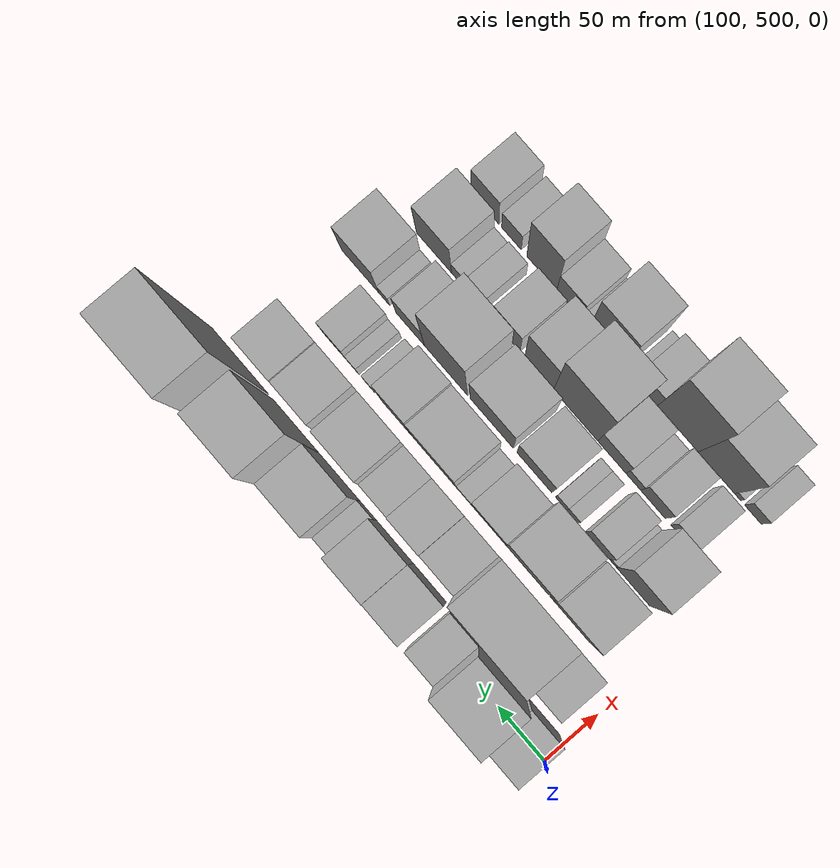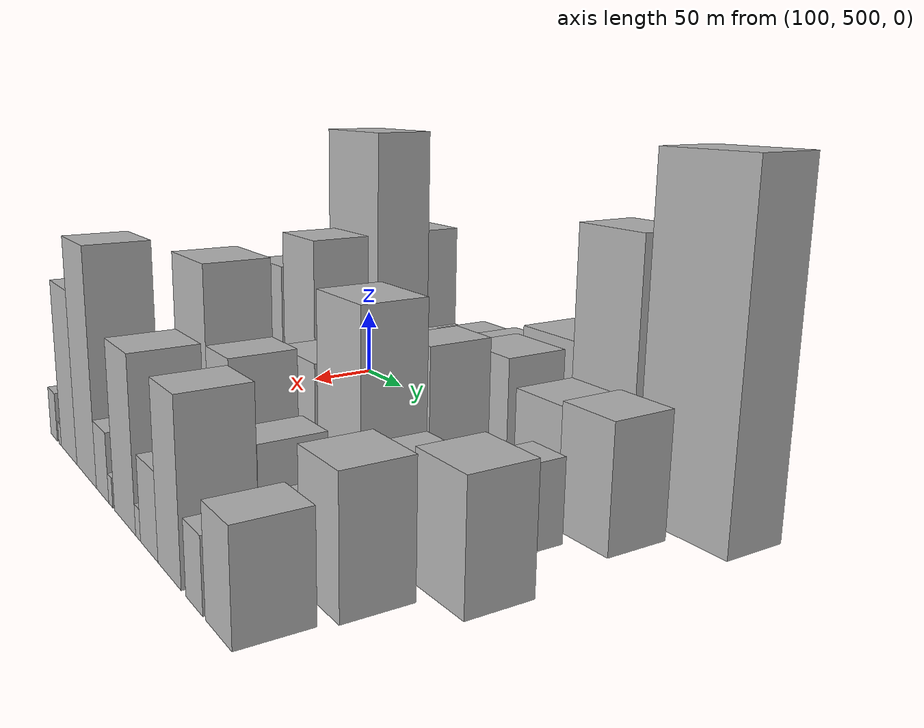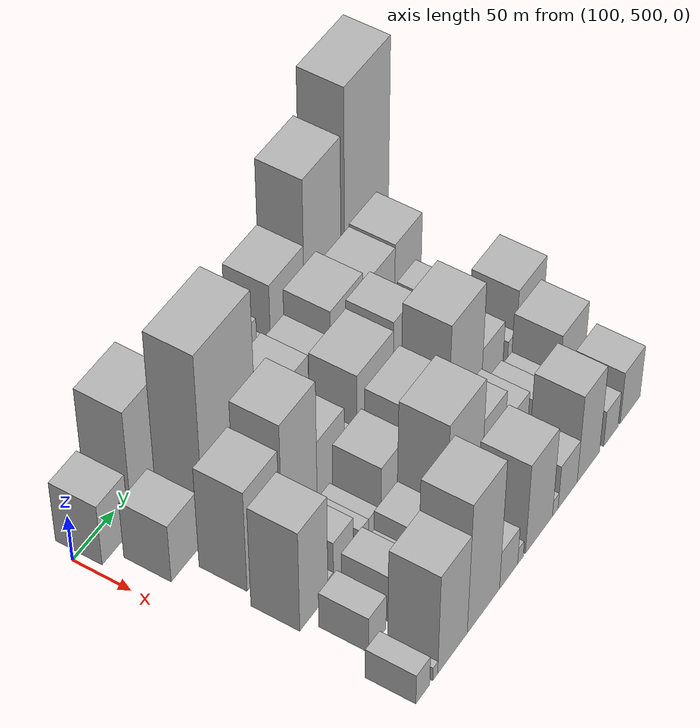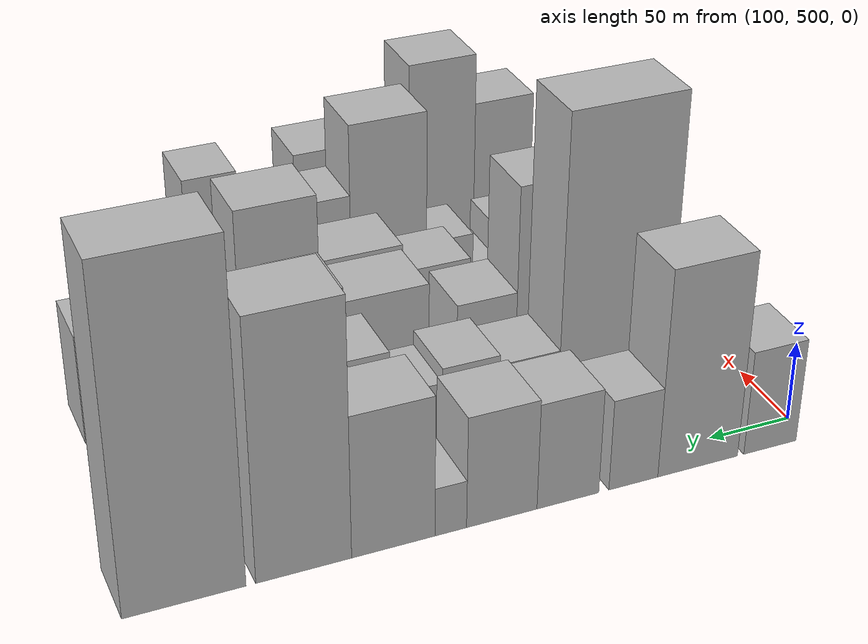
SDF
<sdf version="1.6">
 <world name="default">
  <model name="building_39">
   <static>1</static>
   <pose>100.0000 523.7516 0 0.000000 0.000000 0.000000</pose>
   <link name="link">
    <pose>0 0 33.00 0 0 0</pose>
    <collision name="collision"><geometry><box><size>40.0000 33.1210 66.0000</size></box></geometry></collision>
    <visual name="visual">
     <cast_shadows>0</cast_shadows>
     <geometry><box><size>40.0000 33.1210 66.0000</size></box></geometry>
     <material>
      <script>
       <uri>model://HANNAS_wall/materials/scripts</uri>
       <uri>model://HANNAS_wall/materials/textures</uri>
       <name>vrc/HANNAS_wall</name>
      </script>
     </material>
    </visual>
   </link>
  </model>
  <model name="building_40">
   <static>1</static>
   <pose>100.0000 568.8600 0 0.000000 0.000000 0.000000</pose>
   <link name="link">
    <pose>0 0 64.50 0 0 0</pose>
    <collision name="collision"><geometry><box><size>40.0000 49.0957 129.0000</size></box></geometry></collision>
    <visual name="visual">
     <cast_shadows>0</cast_shadows>
     <geometry><box><size>40.0000 49.0957 129.0000</size></box></geometry>
     <material>
      <script>
       <uri>model://HANNAS_wall/materials/scripts</uri>
       <uri>model://HANNAS_wall/materials/textures</uri>
       <name>vrc/HANNAS_wall</name>
      </script>
     </material>
    </visual>
   </link>
  </model>
  <model name="building_41">
   <static>1</static>
   <pose>100.0000 608.1026 0 0.000000 0.000000 0.000000</pose>
   <link name="link">
    <pose>0 0 28.50 0 0 0</pose>
    <collision name="collision"><geometry><box><size>40.0000 29.3895 57.0000</size></box></geometry></collision>
    <visual name="visual">
     <cast_shadows>0</cast_shadows>
     <geometry><box><size>40.0000 29.3895 57.0000</size></box></geometry>
     <material>
      <script>
       <uri>model://HANNAS_wall/materials/scripts</uri>
       <uri>model://HANNAS_wall/materials/textures</uri>
       <name>vrc/HANNAS_wall</name>
      </script>
     </material>
    </visual>
   </link>
  </model>
  <model name="building_42">
   <static>1</static>
   <pose>100.0000 646.8820 0 0.000000 0.000000 0.000000</pose>
   <link name="link">
    <pose>0 0 33.00 0 0 0</pose>
    <collision name="collision"><geometry><box><size>40.0000 36.1692 66.0000</size></box></geometry></collision>
    <visual name="visual">
     <cast_shadows>0</cast_shadows>
     <geometry><box><size>40.0000 36.1692 66.0000</size></box></geometry>
     <material>
      <script>
       <uri>model://HANNAS_wall/materials/scripts</uri>
       <uri>model://HANNAS_wall/materials/textures</uri>
       <name>vrc/HANNAS_wall</name>
      </script>
     </material>
    </visual>
   </link>
  </model>
  <model name="building_43">
   <static>1</static>
   <pose>100.0000 685.0335 0 0.000000 0.000000 0.000000</pose>
   <link name="link">
    <pose>0 0 34.50 0 0 0</pose>
    <collision name="collision"><geometry><box><size>40.0000 40.1339 69.0000</size></box></geometry></collision>
    <visual name="visual">
     <cast_shadows>0</cast_shadows>
     <geometry><box><size>40.0000 40.1339 69.0000</size></box></geometry>
     <material>
      <script>
       <uri>model://HANNAS_wall/materials/scripts</uri>
       <uri>model://HANNAS_wall/materials/textures</uri>
       <name>vrc/HANNAS_wall</name>
      </script>
     </material>
    </visual>
   </link>
  </model>
  <model name="building_44">
   <static>1</static>
   <pose>100.0000 713.9107 0 0.000000 0.000000 0.000000</pose>
   <link name="link">
    <pose>0 0 15.00 0 0 0</pose>
    <collision name="collision"><geometry><box><size>40.0000 17.6204 30.0000</size></box></geometry></collision>
    <visual name="visual">
     <cast_shadows>0</cast_shadows>
     <geometry><box><size>40.0000 17.6204 30.0000</size></box></geometry>
     <material>
      <script>
       <uri>model://HANNAS_wall/materials/scripts</uri>
       <uri>model://HANNAS_wall/materials/textures</uri>
       <name>vrc/HANNAS_wall</name>
      </script>
     </material>
    </visual>
   </link>
  </model>
  <model name="building_45">
   <static>1</static>
   <pose>100.0000 745.5148 0 0.000000 0.000000 0.000000</pose>
   <link name="link">
    <pose>0 0 43.50 0 0 0</pose>
    <collision name="collision"><geometry><box><size>40.0000 45.5877 87.0000</size></box></geometry></collision>
    <visual name="visual">
     <cast_shadows>0</cast_shadows>
     <geometry><box><size>40.0000 45.5877 87.0000</size></box></geometry>
     <material>
      <script>
       <uri>model://HANNAS_wall/materials/scripts</uri>
       <uri>model://HANNAS_wall/materials/textures</uri>
       <name>vrc/HANNAS_wall</name>
      </script>
     </material>
    </visual>
   </link>
  </model>
  <model name="building_46">
   <static>1</static>
   <pose>100.0000 793.6460 0 0.000000 0.000000 0.000000</pose>
   <link name="link">
    <pose>0 0 78.00 0 0 0</pose>
    <collision name="collision"><geometry><box><size>40.0000 50.6748 156.0000</size></box></geometry></collision>
    <visual name="visual">
     <cast_shadows>0</cast_shadows>
     <geometry><box><size>40.0000 50.6748 156.0000</size></box></geometry>
     <material>
      <script>
       <uri>model://HANNAS_wall/materials/scripts</uri>
       <uri>model://HANNAS_wall/materials/textures</uri>
       <name>vrc/HANNAS_wall</name>
      </script>
     </material>
    </visual>
   </link>
  </model>
  <model name="building_47">
   <static>1</static>
   <pose>100.0000 855.4738 0 0.000000 0.000000 0.000000</pose>
   <link name="link">
    <pose>0 0 100.50 0 0 0</pose>
    <collision name="collision"><geometry><box><size>40.0000 62.9809 201.0000</size></box></geometry></collision>
    <visual name="visual">
     <cast_shadows>0</cast_shadows>
     <geometry><box><size>40.0000 62.9809 201.0000</size></box></geometry>
     <material>
      <script>
       <uri>model://HANNAS_wall/materials/scripts</uri>
       <uri>model://HANNAS_wall/materials/textures</uri>
       <name>vrc/HANNAS_wall</name>
      </script>
     </material>
    </visual>
   </link>
  </model>
  <model name="building_81">
   <static>1</static>
   <pose>149.0000 537.9959 0 0.000000 0.000000 0.000000</pose>
   <link name="link">
    <pose>0 0 31.50 0 0 0</pose>
    <collision name="collision"><geometry><box><size>40.0000 34.4758 63.0000</size></box></geometry></collision>
    <visual name="visual">
     <cast_shadows>0</cast_shadows>
     <geometry><box><size>40.0000 34.4758 63.0000</size></box></geometry>
     <material>
      <script>
       <uri>model://HANNAS_wall/materials/scripts</uri>
       <uri>model://HANNAS_wall/materials/textures</uri>
       <name>vrc/HANNAS_wall</name>
      </script>
     </material>
    </visual>
   </link>
  </model>
  <model name="building_82">
   <static>1</static>
   <pose>149.0000 558.7645 0 0.000000 0.000000 0.000000</pose>
   <link name="link">
    <pose>0 0 7.50 0 0 0</pose>
    <collision name="collision"><geometry><box><size>40.0000 7.0613 15.0000</size></box></geometry></collision>
    <visual name="visual">
     <cast_shadows>0</cast_shadows>
     <geometry><box><size>40.0000 7.0613 15.0000</size></box></geometry>
     <material>
      <script>
       <uri>model://HANNAS_wall/materials/scripts</uri>
       <uri>model://HANNAS_wall/materials/textures</uri>
       <name>vrc/HANNAS_wall</name>
      </script>
     </material>
    </visual>
   </link>
  </model>
  <model name="building_83">
   <static>1</static>
   <pose>149.0000 595.9951 0 0.000000 0.000000 0.000000</pose>
   <link name="link">
    <pose>0 0 100.50 0 0 0</pose>
    <collision name="collision"><geometry><box><size>40.0000 67.3999 201.0000</size></box></geometry></collision>
    <visual name="visual">
     <cast_shadows>0</cast_shadows>
     <geometry><box><size>40.0000 67.3999 201.0000</size></box></geometry>
     <material>
      <script>
       <uri>model://HANNAS_wall/materials/scripts</uri>
       <uri>model://HANNAS_wall/materials/textures</uri>
       <name>vrc/HANNAS_wall</name>
      </script>
     </material>
    </visual>
   </link>
  </model>
  <model name="building_84">
   <static>1</static>
   <pose>149.0000 647.2620 0 0.000000 0.000000 0.000000</pose>
   <link name="link">
    <pose>0 0 30.00 0 0 0</pose>
    <collision name="collision"><geometry><box><size>40.0000 35.1339 60.0000</size></box></geometry></collision>
    <visual name="visual">
     <cast_shadows>0</cast_shadows>
     <geometry><box><size>40.0000 35.1339 60.0000</size></box></geometry>
     <material>
      <script>
       <uri>model://HANNAS_wall/materials/scripts</uri>
       <uri>model://HANNAS_wall/materials/textures</uri>
       <name>vrc/HANNAS_wall</name>
      </script>
     </material>
    </visual>
   </link>
  </model>
  <model name="building_85">
   <static>1</static>
   <pose>149.0000 681.3582 0 0.000000 0.000000 0.000000</pose>
   <link name="link">
    <pose>0 0 33.00 0 0 0</pose>
    <collision name="collision"><geometry><box><size>40.0000 33.0585 66.0000</size></box></geometry></collision>
    <visual name="visual">
     <cast_shadows>0</cast_shadows>
     <geometry><box><size>40.0000 33.0585 66.0000</size></box></geometry>
     <material>
      <script>
       <uri>model://HANNAS_wall/materials/scripts</uri>
       <uri>model://HANNAS_wall/materials/textures</uri>
       <name>vrc/HANNAS_wall</name>
      </script>
     </material>
    </visual>
   </link>
  </model>
  <model name="building_86">
   <static>1</static>
   <pose>149.0000 712.7002 0 0.000000 0.000000 0.000000</pose>
   <link name="link">
    <pose>0 0 28.50 0 0 0</pose>
    <collision name="collision"><geometry><box><size>40.0000 29.6255 57.0000</size></box></geometry></collision>
    <visual name="visual">
     <cast_shadows>0</cast_shadows>
     <geometry><box><size>40.0000 29.6255 57.0000</size></box></geometry>
     <material>
      <script>
       <uri>model://HANNAS_wall/materials/scripts</uri>
       <uri>model://HANNAS_wall/materials/textures</uri>
       <name>vrc/HANNAS_wall</name>
      </script>
     </material>
    </visual>
   </link>
  </model>
  <model name="building_87">
   <static>1</static>
   <pose>149.0000 749.3978 0 0.000000 0.000000 0.000000</pose>
   <link name="link">
    <pose>0 0 42.00 0 0 0</pose>
    <collision name="collision"><geometry><box><size>40.0000 43.7697 84.0000</size></box></geometry></collision>
    <visual name="visual">
     <cast_shadows>0</cast_shadows>
     <geometry><box><size>40.0000 43.7697 84.0000</size></box></geometry>
     <material>
      <script>
       <uri>model://HANNAS_wall/materials/scripts</uri>
       <uri>model://HANNAS_wall/materials/textures</uri>
       <name>vrc/HANNAS_wall</name>
      </script>
     </material>
    </visual>
   </link>
  </model>
  <model name="building_88">
   <static>1</static>
   <pose>149.0000 797.3217 0 0.000000 0.000000 0.000000</pose>
   <link name="link">
    <pose>0 0 34.50 0 0 0</pose>
    <collision name="collision"><geometry><box><size>40.0000 38.0780 69.0000</size></box></geometry></collision>
    <visual name="visual">
     <cast_shadows>0</cast_shadows>
     <geometry><box><size>40.0000 38.0780 69.0000</size></box></geometry>
     <material>
      <script>
       <uri>model://HANNAS_wall/materials/scripts</uri>
       <uri>model://HANNAS_wall/materials/textures</uri>
       <name>vrc/HANNAS_wall</name>
      </script>
     </material>
    </visual>
   </link>
  </model>
  <model name="building_89">
   <static>1</static>
   <pose>149.0000 835.4678 0 0.000000 0.000000 0.000000</pose>
   <link name="link">
    <pose>0 0 36.00 0 0 0</pose>
    <collision name="collision"><geometry><box><size>40.0000 38.2143 72.0000</size></box></geometry></collision>
    <visual name="visual">
     <cast_shadows>0</cast_shadows>
     <geometry><box><size>40.0000 38.2143 72.0000</size></box></geometry>
     <material>
      <script>
       <uri>model://HANNAS_wall/materials/scripts</uri>
       <uri>model://HANNAS_wall/materials/textures</uri>
       <name>vrc/HANNAS_wall</name>
      </script>
     </material>
    </visual>
   </link>
  </model>
  <model name="building_136">
   <static>1</static>
   <pose>198.0000 563.0248 0 0.000000 0.000000 0.000000</pose>
   <link name="link">
    <pose>0 0 55.50 0 0 0</pose>
    <collision name="collision"><geometry><box><size>40.0000 41.9967 111.0000</size></box></geometry></collision>
    <visual name="visual">
     <cast_shadows>0</cast_shadows>
     <geometry><box><size>40.0000 41.9967 111.0000</size></box></geometry>
     <material>
      <script>
       <uri>model://HANNAS_wall/materials/scripts</uri>
       <uri>model://HANNAS_wall/materials/textures</uri>
       <name>vrc/HANNAS_wall</name>
      </script>
     </material>
    </visual>
   </link>
  </model>
  <model name="building_137">
   <static>1</static>
   <pose>198.0000 609.5881 0 0.000000 0.000000 0.000000</pose>
   <link name="link">
    <pose>0 0 67.50 0 0 0</pose>
    <collision name="collision"><geometry><box><size>40.0000 45.1298 135.0000</size></box></geometry></collision>
    <visual name="visual">
     <cast_shadows>0</cast_shadows>
     <geometry><box><size>40.0000 45.1298 135.0000</size></box></geometry>
     <material>
      <script>
       <uri>model://HANNAS_wall/materials/scripts</uri>
       <uri>model://HANNAS_wall/materials/textures</uri>
       <name>vrc/HANNAS_wall</name>
      </script>
     </material>
    </visual>
   </link>
  </model>
  <model name="building_138">
   <static>1</static>
   <pose>198.0000 650.2063 0 0.000000 0.000000 0.000000</pose>
   <link name="link">
    <pose>0 0 34.50 0 0 0</pose>
    <collision name="collision"><geometry><box><size>40.0000 36.1065 69.0000</size></box></geometry></collision>
    <visual name="visual">
     <cast_shadows>0</cast_shadows>
     <geometry><box><size>40.0000 36.1065 69.0000</size></box></geometry>
     <material>
      <script>
       <uri>model://HANNAS_wall/materials/scripts</uri>
       <uri>model://HANNAS_wall/materials/textures</uri>
       <name>vrc/HANNAS_wall</name>
      </script>
     </material>
    </visual>
   </link>
  </model>
  <model name="building_139">
   <static>1</static>
   <pose>198.0000 676.5970 0 0.000000 0.000000 0.000000</pose>
   <link name="link">
    <pose>0 0 15.00 0 0 0</pose>
    <collision name="collision"><geometry><box><size>40.0000 16.6750 30.0000</size></box></geometry></collision>
    <visual name="visual">
     <cast_shadows>0</cast_shadows>
     <geometry><box><size>40.0000 16.6750 30.0000</size></box></geometry>
     <material>
      <script>
       <uri>model://HANNAS_wall/materials/scripts</uri>
       <uri>model://HANNAS_wall/materials/textures</uri>
       <name>vrc/HANNAS_wall</name>
      </script>
     </material>
    </visual>
   </link>
  </model>
  <model name="building_140">
   <static>1</static>
   <pose>198.0000 709.4864 0 0.000000 0.000000 0.000000</pose>
   <link name="link">
    <pose>0 0 43.50 0 0 0</pose>
    <collision name="collision"><geometry><box><size>40.0000 49.1038 87.0000</size></box></geometry></collision>
    <visual name="visual">
     <cast_shadows>0</cast_shadows>
     <geometry><box><size>40.0000 49.1038 87.0000</size></box></geometry>
     <material>
      <script>
       <uri>model://HANNAS_wall/materials/scripts</uri>
       <uri>model://HANNAS_wall/materials/textures</uri>
       <name>vrc/HANNAS_wall</name>
      </script>
     </material>
    </visual>
   </link>
  </model>
  <model name="building_141">
   <static>1</static>
   <pose>198.0000 750.1333 0 0.000000 0.000000 0.000000</pose>
   <link name="link">
    <pose>0 0 48.00 0 0 0</pose>
    <collision name="collision"><geometry><box><size>40.0000 32.1902 96.0000</size></box></geometry></collision>
    <visual name="visual">
     <cast_shadows>0</cast_shadows>
     <geometry><box><size>40.0000 32.1902 96.0000</size></box></geometry>
     <material>
      <script>
       <uri>model://HANNAS_wall/materials/scripts</uri>
       <uri>model://HANNAS_wall/materials/textures</uri>
       <name>vrc/HANNAS_wall</name>
      </script>
     </material>
    </visual>
   </link>
  </model>
  <model name="building_142">
   <static>1</static>
   <pose>198.0000 780.8213 0 0.000000 0.000000 0.000000</pose>
   <link name="link">
    <pose>0 0 13.50 0 0 0</pose>
    <collision name="collision"><geometry><box><size>40.0000 11.1858 27.0000</size></box></geometry></collision>
    <visual name="visual">
     <cast_shadows>0</cast_shadows>
     <geometry><box><size>40.0000 11.1858 27.0000</size></box></geometry>
     <material>
      <script>
       <uri>model://HANNAS_wall/materials/scripts</uri>
       <uri>model://HANNAS_wall/materials/textures</uri>
       <name>vrc/HANNAS_wall</name>
      </script>
     </material>
    </visual>
   </link>
  </model>
  <model name="building_143">
   <static>1</static>
   <pose>198.0000 798.4821 0 0.000000 0.000000 0.000000</pose>
   <link name="link">
    <pose>0 0 13.50 0 0 0</pose>
    <collision name="collision"><geometry><box><size>40.0000 12.1358 27.0000</size></box></geometry></collision>
    <visual name="visual">
     <cast_shadows>0</cast_shadows>
     <geometry><box><size>40.0000 12.1358 27.0000</size></box></geometry>
     <material>
      <script>
       <uri>model://HANNAS_wall/materials/scripts</uri>
       <uri>model://HANNAS_wall/materials/textures</uri>
       <name>vrc/HANNAS_wall</name>
      </script>
     </material>
    </visual>
   </link>
  </model>
  <model name="building_144">
   <static>1</static>
   <pose>198.0000 817.7403 0 0.000000 0.000000 0.000000</pose>
   <link name="link">
    <pose>0 0 24.00 0 0 0</pose>
    <collision name="collision"><geometry><box><size>40.0000 26.3806 48.0000</size></box></geometry></collision>
    <visual name="visual">
     <cast_shadows>0</cast_shadows>
     <geometry><box><size>40.0000 26.3806 48.0000</size></box></geometry>
     <material>
      <script>
       <uri>model://HANNAS_wall/materials/scripts</uri>
       <uri>model://HANNAS_wall/materials/textures</uri>
       <name>vrc/HANNAS_wall</name>
      </script>
     </material>
    </visual>
   </link>
  </model>
  <model name="building_189">
   <static>1</static>
   <pose>247.0000 551.1854 0 0.000000 0.000000 0.000000</pose>
   <link name="link">
    <pose>0 0 55.50 0 0 0</pose>
    <collision name="collision"><geometry><box><size>40.0000 35.8610 111.0000</size></box></geometry></collision>
    <visual name="visual">
     <cast_shadows>0</cast_shadows>
     <geometry><box><size>40.0000 35.8610 111.0000</size></box></geometry>
     <material>
      <script>
       <uri>model://HANNAS_wall/materials/scripts</uri>
       <uri>model://HANNAS_wall/materials/textures</uri>
       <name>vrc/HANNAS_wall</name>
      </script>
     </material>
    </visual>
   </link>
  </model>
  <model name="building_190">
   <static>1</static>
   <pose>247.0000 572.7639 0 0.000000 0.000000 0.000000</pose>
   <link name="link">
    <pose>0 0 9.00 0 0 0</pose>
    <collision name="collision"><geometry><box><size>40.0000 7.2962 18.0000</size></box></geometry></collision>
    <visual name="visual">
     <cast_shadows>0</cast_shadows>
     <geometry><box><size>40.0000 7.2962 18.0000</size></box></geometry>
     <material>
      <script>
       <uri>model://HANNAS_wall/materials/scripts</uri>
       <uri>model://HANNAS_wall/materials/textures</uri>
       <name>vrc/HANNAS_wall</name>
      </script>
     </material>
    </visual>
   </link>
  </model>
  <model name="building_191">
   <static>1</static>
   <pose>247.0000 589.3171 0 0.000000 0.000000 0.000000</pose>
   <link name="link">
    <pose>0 0 25.50 0 0 0</pose>
    <collision name="collision"><geometry><box><size>40.0000 25.8101 51.0000</size></box></geometry></collision>
    <visual name="visual">
     <cast_shadows>0</cast_shadows>
     <geometry><box><size>40.0000 25.8101 51.0000</size></box></geometry>
     <material>
      <script>
       <uri>model://HANNAS_wall/materials/scripts</uri>
       <uri>model://HANNAS_wall/materials/textures</uri>
       <name>vrc/HANNAS_wall</name>
      </script>
     </material>
    </visual>
   </link>
  </model>
  <model name="building_192">
   <static>1</static>
   <pose>247.0000 616.3076 0 0.000000 0.000000 0.000000</pose>
   <link name="link">
    <pose>0 0 13.50 0 0 0</pose>
    <collision name="collision"><geometry><box><size>40.0000 12.1710 27.0000</size></box></geometry></collision>
    <visual name="visual">
     <cast_shadows>0</cast_shadows>
     <geometry><box><size>40.0000 12.1710 27.0000</size></box></geometry>
     <material>
      <script>
       <uri>model://HANNAS_wall/materials/scripts</uri>
       <uri>model://HANNAS_wall/materials/textures</uri>
       <name>vrc/HANNAS_wall</name>
      </script>
     </material>
    </visual>
   </link>
  </model>
  <model name="building_193">
   <static>1</static>
   <pose>247.0000 628.5449 0 0.000000 0.000000 0.000000</pose>
   <link name="link">
    <pose>0 0 13.50 0 0 0</pose>
    <collision name="collision"><geometry><box><size>40.0000 12.3037 27.0000</size></box></geometry></collision>
    <visual name="visual">
     <cast_shadows>0</cast_shadows>
     <geometry><box><size>40.0000 12.3037 27.0000</size></box></geometry>
     <material>
      <script>
       <uri>model://HANNAS_wall/materials/scripts</uri>
       <uri>model://HANNAS_wall/materials/textures</uri>
       <name>vrc/HANNAS_wall</name>
      </script>
     </material>
    </visual>
   </link>
  </model>
  <model name="building_194">
   <static>1</static>
   <pose>247.0000 657.6091 0 0.000000 0.000000 0.000000</pose>
   <link name="link">
    <pose>0 0 33.00 0 0 0</pose>
    <collision name="collision"><geometry><box><size>40.0000 37.8245 66.0000</size></box></geometry></collision>
    <visual name="visual">
     <cast_shadows>0</cast_shadows>
     <geometry><box><size>40.0000 37.8245 66.0000</size></box></geometry>
     <material>
      <script>
       <uri>model://HANNAS_wall/materials/scripts</uri>
       <uri>model://HANNAS_wall/materials/textures</uri>
       <name>vrc/HANNAS_wall</name>
      </script>
     </material>
    </visual>
   </link>
  </model>
  <model name="building_195">
   <static>1</static>
   <pose>247.0000 703.9130 0 0.000000 0.000000 0.000000</pose>
   <link name="link">
    <pose>0 0 42.00 0 0 0</pose>
    <collision name="collision"><geometry><box><size>40.0000 46.7833 84.0000</size></box></geometry></collision>
    <visual name="visual">
     <cast_shadows>0</cast_shadows>
     <geometry><box><size>40.0000 46.7833 84.0000</size></box></geometry>
     <material>
      <script>
       <uri>model://HANNAS_wall/materials/scripts</uri>
       <uri>model://HANNAS_wall/materials/textures</uri>
       <name>vrc/HANNAS_wall</name>
      </script>
     </material>
    </visual>
   </link>
  </model>
  <model name="building_196">
   <static>1</static>
   <pose>247.0000 753.9363 0 0.000000 0.000000 0.000000</pose>
   <link name="link">
    <pose>0 0 63.00 0 0 0</pose>
    <collision name="collision"><geometry><box><size>40.0000 47.2633 126.0000</size></box></geometry></collision>
    <visual name="visual">
     <cast_shadows>0</cast_shadows>
     <geometry><box><size>40.0000 47.2633 126.0000</size></box></geometry>
     <material>
      <script>
       <uri>model://HANNAS_wall/materials/scripts</uri>
       <uri>model://HANNAS_wall/materials/textures</uri>
       <name>vrc/HANNAS_wall</name>
      </script>
     </material>
    </visual>
   </link>
  </model>
  <model name="building_197">
   <static>1</static>
   <pose>247.0000 793.2751 0 0.000000 0.000000 0.000000</pose>
   <link name="link">
    <pose>0 0 27.00 0 0 0</pose>
    <collision name="collision"><geometry><box><size>40.0000 31.4143 54.0000</size></box></geometry></collision>
    <visual name="visual">
     <cast_shadows>0</cast_shadows>
     <geometry><box><size>40.0000 31.4143 54.0000</size></box></geometry>
     <material>
      <script>
       <uri>model://HANNAS_wall/materials/scripts</uri>
       <uri>model://HANNAS_wall/materials/textures</uri>
       <name>vrc/HANNAS_wall</name>
      </script>
     </material>
    </visual>
   </link>
  </model>
  <model name="building_198">
   <static>1</static>
   <pose>247.0000 821.9443 0 0.000000 0.000000 0.000000</pose>
   <link name="link">
    <pose>0 0 12.00 0 0 0</pose>
    <collision name="collision"><geometry><box><size>40.0000 11.9241 24.0000</size></box></geometry></collision>
    <visual name="visual">
     <cast_shadows>0</cast_shadows>
     <geometry><box><size>40.0000 11.9241 24.0000</size></box></geometry>
     <material>
      <script>
       <uri>model://HANNAS_wall/materials/scripts</uri>
       <uri>model://HANNAS_wall/materials/textures</uri>
       <name>vrc/HANNAS_wall</name>
      </script>
     </material>
    </visual>
   </link>
  </model>
  <model name="building_199">
   <static>1</static>
   <pose>247.0000 848.2971 0 0.000000 0.000000 0.000000</pose>
   <link name="link">
    <pose>0 0 34.50 0 0 0</pose>
    <collision name="collision"><geometry><box><size>40.0000 40.7817 69.0000</size></box></geometry></collision>
    <visual name="visual">
     <cast_shadows>0</cast_shadows>
     <geometry><box><size>40.0000 40.7817 69.0000</size></box></geometry>
     <material>
      <script>
       <uri>model://HANNAS_wall/materials/scripts</uri>
       <uri>model://HANNAS_wall/materials/textures</uri>
       <name>vrc/HANNAS_wall</name>
      </script>
     </material>
    </visual>
   </link>
  </model>
  <model name="building_239">
   <static>1</static>
   <pose>296.0000 554.8726 0 0.000000 0.000000 0.000000</pose>
   <link name="link">
    <pose>0 0 19.50 0 0 0</pose>
    <collision name="collision"><geometry><box><size>40.0000 22.9529 39.0000</size></box></geometry></collision>
    <visual name="visual">
     <cast_shadows>0</cast_shadows>
     <geometry><box><size>40.0000 22.9529 39.0000</size></box></geometry>
     <material>
      <script>
       <uri>model://HANNAS_wall/materials/scripts</uri>
       <uri>model://HANNAS_wall/materials/textures</uri>
       <name>vrc/HANNAS_wall</name>
      </script>
     </material>
    </visual>
   </link>
  </model>
  <model name="building_240">
   <static>1</static>
   <pose>296.0000 585.6254 0 0.000000 0.000000 0.000000</pose>
   <link name="link">
    <pose>0 0 25.50 0 0 0</pose>
    <collision name="collision"><geometry><box><size>40.0000 26.5528 51.0000</size></box></geometry></collision>
    <visual name="visual">
     <cast_shadows>0</cast_shadows>
     <geometry><box><size>40.0000 26.5528 51.0000</size></box></geometry>
     <material>
      <script>
       <uri>model://HANNAS_wall/materials/scripts</uri>
       <uri>model://HANNAS_wall/materials/textures</uri>
       <name>vrc/HANNAS_wall</name>
      </script>
     </material>
    </visual>
   </link>
  </model>
  <model name="building_241">
   <static>1</static>
   <pose>296.0000 606.9229 0 0.000000 0.000000 0.000000</pose>
   <link name="link">
    <pose>0 0 15.00 0 0 0</pose>
    <collision name="collision"><geometry><box><size>40.0000 16.0421 30.0000</size></box></geometry></collision>
    <visual name="visual">
     <cast_shadows>0</cast_shadows>
     <geometry><box><size>40.0000 16.0421 30.0000</size></box></geometry>
     <material>
      <script>
       <uri>model://HANNAS_wall/materials/scripts</uri>
       <uri>model://HANNAS_wall/materials/textures</uri>
       <name>vrc/HANNAS_wall</name>
      </script>
     </material>
    </visual>
   </link>
  </model>
  <model name="building_242">
   <static>1</static>
   <pose>296.0000 630.1055 0 0.000000 0.000000 0.000000</pose>
   <link name="link">
    <pose>0 0 25.50 0 0 0</pose>
    <collision name="collision"><geometry><box><size>40.0000 30.3230 51.0000</size></box></geometry></collision>
    <visual name="visual">
     <cast_shadows>0</cast_shadows>
     <geometry><box><size>40.0000 30.3230 51.0000</size></box></geometry>
     <material>
      <script>
       <uri>model://HANNAS_wall/materials/scripts</uri>
       <uri>model://HANNAS_wall/materials/textures</uri>
       <name>vrc/HANNAS_wall</name>
      </script>
     </material>
    </visual>
   </link>
  </model>
  <model name="building_243">
   <static>1</static>
   <pose>296.0000 669.3194 0 0.000000 0.000000 0.000000</pose>
   <link name="link">
    <pose>0 0 69.00 0 0 0</pose>
    <collision name="collision"><geometry><box><size>40.0000 48.1048 138.0000</size></box></geometry></collision>
    <visual name="visual">
     <cast_shadows>0</cast_shadows>
     <geometry><box><size>40.0000 48.1048 138.0000</size></box></geometry>
     <material>
      <script>
       <uri>model://HANNAS_wall/materials/scripts</uri>
       <uri>model://HANNAS_wall/materials/textures</uri>
       <name>vrc/HANNAS_wall</name>
      </script>
     </material>
    </visual>
   </link>
  </model>
  <model name="building_244">
   <static>1</static>
   <pose>296.0000 709.0777 0 0.000000 0.000000 0.000000</pose>
   <link name="link">
    <pose>0 0 46.50 0 0 0</pose>
    <collision name="collision"><geometry><box><size>40.0000 31.4119 93.0000</size></box></geometry></collision>
    <visual name="visual">
     <cast_shadows>0</cast_shadows>
     <geometry><box><size>40.0000 31.4119 93.0000</size></box></geometry>
     <material>
      <script>
       <uri>model://HANNAS_wall/materials/scripts</uri>
       <uri>model://HANNAS_wall/materials/textures</uri>
       <name>vrc/HANNAS_wall</name>
      </script>
     </material>
    </visual>
   </link>
  </model>
  <model name="building_245">
   <static>1</static>
   <pose>296.0000 744.4654 0 0.000000 0.000000 0.000000</pose>
   <link name="link">
    <pose>0 0 28.50 0 0 0</pose>
    <collision name="collision"><geometry><box><size>40.0000 29.3634 57.0000</size></box></geometry></collision>
    <visual name="visual">
     <cast_shadows>0</cast_shadows>
     <geometry><box><size>40.0000 29.3634 57.0000</size></box></geometry>
     <material>
      <script>
       <uri>model://HANNAS_wall/materials/scripts</uri>
       <uri>model://HANNAS_wall/materials/textures</uri>
       <name>vrc/HANNAS_wall</name>
      </script>
     </material>
    </visual>
   </link>
  </model>
  <model name="building_246">
   <static>1</static>
   <pose>296.0000 779.2768 0 0.000000 0.000000 0.000000</pose>
   <link name="link">
    <pose>0 0 18.00 0 0 0</pose>
    <collision name="collision"><geometry><box><size>40.0000 20.2593 36.0000</size></box></geometry></collision>
    <visual name="visual">
     <cast_shadows>0</cast_shadows>
     <geometry><box><size>40.0000 20.2593 36.0000</size></box></geometry>
     <material>
      <script>
       <uri>model://HANNAS_wall/materials/scripts</uri>
       <uri>model://HANNAS_wall/materials/textures</uri>
       <name>vrc/HANNAS_wall</name>
      </script>
     </material>
    </visual>
   </link>
  </model>
  <model name="building_247">
   <static>1</static>
   <pose>296.0000 797.1438 0 0.000000 0.000000 0.000000</pose>
   <link name="link">
    <pose>0 0 15.00 0 0 0</pose>
    <collision name="collision"><geometry><box><size>40.0000 15.4746 30.0000</size></box></geometry></collision>
    <visual name="visual">
     <cast_shadows>0</cast_shadows>
     <geometry><box><size>40.0000 15.4746 30.0000</size></box></geometry>
     <material>
      <script>
       <uri>model://HANNAS_wall/materials/scripts</uri>
       <uri>model://HANNAS_wall/materials/textures</uri>
       <name>vrc/HANNAS_wall</name>
      </script>
     </material>
    </visual>
   </link>
  </model>
  <model name="building_248">
   <static>1</static>
   <pose>296.0000 824.3297 0 0.000000 0.000000 0.000000</pose>
   <link name="link">
    <pose>0 0 36.00 0 0 0</pose>
    <collision name="collision"><geometry><box><size>40.0000 38.8973 72.0000</size></box></geometry></collision>
    <visual name="visual">
     <cast_shadows>0</cast_shadows>
     <geometry><box><size>40.0000 38.8973 72.0000</size></box></geometry>
     <material>
      <script>
       <uri>model://HANNAS_wall/materials/scripts</uri>
       <uri>model://HANNAS_wall/materials/textures</uri>
       <name>vrc/HANNAS_wall</name>
      </script>
     </material>
    </visual>
   </link>
  </model>
  <model name="building_289">
   <static>1</static>
   <pose>345.0000 533.8562 0 0.000000 0.000000 0.000000</pose>
   <link name="link">
    <pose>0 0 16.50 0 0 0</pose>
    <collision name="collision"><geometry><box><size>40.0000 17.9841 33.0000</size></box></geometry></collision>
    <visual name="visual">
     <cast_shadows>0</cast_shadows>
     <geometry><box><size>40.0000 17.9841 33.0000</size></box></geometry>
     <material>
      <script>
       <uri>model://HANNAS_wall/materials/scripts</uri>
       <uri>model://HANNAS_wall/materials/textures</uri>
       <name>vrc/HANNAS_wall</name>
      </script>
     </material>
    </visual>
   </link>
  </model>
  <model name="building_290">
   <static>1</static>
   <pose>345.0000 550.0987 0 0.000000 0.000000 0.000000</pose>
   <link name="link">
    <pose>0 0 7.50 0 0 0</pose>
    <collision name="collision"><geometry><box><size>40.0000 6.5010 15.0000</size></box></geometry></collision>
    <visual name="visual">
     <cast_shadows>0</cast_shadows>
     <geometry><box><size>40.0000 6.5010 15.0000</size></box></geometry>
     <material>
      <script>
       <uri>model://HANNAS_wall/materials/scripts</uri>
       <uri>model://HANNAS_wall/materials/textures</uri>
       <name>vrc/HANNAS_wall</name>
      </script>
     </material>
    </visual>
   </link>
  </model>
  <model name="building_291">
   <static>1</static>
   <pose>345.0000 572.9668 0 0.000000 0.000000 0.000000</pose>
   <link name="link">
    <pose>0 0 55.50 0 0 0</pose>
    <collision name="collision"><geometry><box><size>40.0000 39.2352 111.0000</size></box></geometry></collision>
    <visual name="visual">
     <cast_shadows>0</cast_shadows>
     <geometry><box><size>40.0000 39.2352 111.0000</size></box></geometry>
     <material>
      <script>
       <uri>model://HANNAS_wall/materials/scripts</uri>
       <uri>model://HANNAS_wall/materials/textures</uri>
       <name>vrc/HANNAS_wall</name>
      </script>
     </material>
    </visual>
   </link>
  </model>
  <model name="building_292">
   <static>1</static>
   <pose>345.0000 614.4533 0 0.000000 0.000000 0.000000</pose>
   <link name="link">
    <pose>0 0 72.00 0 0 0</pose>
    <collision name="collision"><geometry><box><size>40.0000 43.7378 144.0000</size></box></geometry></collision>
    <visual name="visual">
     <cast_shadows>0</cast_shadows>
     <geometry><box><size>40.0000 43.7378 144.0000</size></box></geometry>
     <material>
      <script>
       <uri>model://HANNAS_wall/materials/scripts</uri>
       <uri>model://HANNAS_wall/materials/textures</uri>
       <name>vrc/HANNAS_wall</name>
      </script>
     </material>
    </visual>
   </link>
  </model>
  <model name="building_293">
   <static>1</static>
   <pose>345.0000 648.8877 0 0.000000 0.000000 0.000000</pose>
   <link name="link">
    <pose>0 0 21.00 0 0 0</pose>
    <collision name="collision"><geometry><box><size>40.0000 25.1310 42.0000</size></box></geometry></collision>
    <visual name="visual">
     <cast_shadows>0</cast_shadows>
     <geometry><box><size>40.0000 25.1310 42.0000</size></box></geometry>
     <material>
      <script>
       <uri>model://HANNAS_wall/materials/scripts</uri>
       <uri>model://HANNAS_wall/materials/textures</uri>
       <name>vrc/HANNAS_wall</name>
      </script>
     </material>
    </visual>
   </link>
  </model>
  <model name="building_294">
   <static>1</static>
   <pose>345.0000 665.3619 0 0.000000 0.000000 0.000000</pose>
   <link name="link">
    <pose>0 0 9.00 0 0 0</pose>
    <collision name="collision"><geometry><box><size>40.0000 7.8173 18.0000</size></box></geometry></collision>
    <visual name="visual">
     <cast_shadows>0</cast_shadows>
     <geometry><box><size>40.0000 7.8173 18.0000</size></box></geometry>
     <material>
      <script>
       <uri>model://HANNAS_wall/materials/scripts</uri>
       <uri>model://HANNAS_wall/materials/textures</uri>
       <name>vrc/HANNAS_wall</name>
      </script>
     </material>
    </visual>
   </link>
  </model>
  <model name="building_295">
   <static>1</static>
   <pose>345.0000 691.3940 0 0.000000 0.000000 0.000000</pose>
   <link name="link">
    <pose>0 0 49.50 0 0 0</pose>
    <collision name="collision"><geometry><box><size>40.0000 38.2470 99.0000</size></box></geometry></collision>
    <visual name="visual">
     <cast_shadows>0</cast_shadows>
     <geometry><box><size>40.0000 38.2470 99.0000</size></box></geometry>
     <material>
      <script>
       <uri>model://HANNAS_wall/materials/scripts</uri>
       <uri>model://HANNAS_wall/materials/textures</uri>
       <name>vrc/HANNAS_wall</name>
      </script>
     </material>
    </visual>
   </link>
  </model>
  <model name="building_296">
   <static>1</static>
   <pose>345.0000 714.5538 0 0.000000 0.000000 0.000000</pose>
   <link name="link">
    <pose>0 0 9.00 0 0 0</pose>
    <collision name="collision"><geometry><box><size>40.0000 8.0727 18.0000</size></box></geometry></collision>
    <visual name="visual">
     <cast_shadows>0</cast_shadows>
     <geometry><box><size>40.0000 8.0727 18.0000</size></box></geometry>
     <material>
      <script>
       <uri>model://HANNAS_wall/materials/scripts</uri>
       <uri>model://HANNAS_wall/materials/textures</uri>
       <name>vrc/HANNAS_wall</name>
      </script>
     </material>
    </visual>
   </link>
  </model>
  <model name="building_297">
   <static>1</static>
   <pose>345.0000 732.3738 0 0.000000 0.000000 0.000000</pose>
   <link name="link">
    <pose>0 0 24.00 0 0 0</pose>
    <collision name="collision"><geometry><box><size>40.0000 27.5672 48.0000</size></box></geometry></collision>
    <visual name="visual">
     <cast_shadows>0</cast_shadows>
     <geometry><box><size>40.0000 27.5672 48.0000</size></box></geometry>
     <material>
      <script>
       <uri>model://HANNAS_wall/materials/scripts</uri>
       <uri>model://HANNAS_wall/materials/textures</uri>
       <name>vrc/HANNAS_wall</name>
      </script>
     </material>
    </visual>
   </link>
  </model>
  <model name="building_298">
   <static>1</static>
   <pose>345.0000 762.6416 0 0.000000 0.000000 0.000000</pose>
   <link name="link">
    <pose>0 0 48.00 0 0 0</pose>
    <collision name="collision"><geometry><box><size>40.0000 32.9685 96.0000</size></box></geometry></collision>
    <visual name="visual">
     <cast_shadows>0</cast_shadows>
     <geometry><box><size>40.0000 32.9685 96.0000</size></box></geometry>
     <material>
      <script>
       <uri>model://HANNAS_wall/materials/scripts</uri>
       <uri>model://HANNAS_wall/materials/textures</uri>
       <name>vrc/HANNAS_wall</name>
      </script>
     </material>
    </visual>
   </link>
  </model>
  <model name="building_299">
   <static>1</static>
   <pose>345.0000 795.9360 0 0.000000 0.000000 0.000000</pose>
   <link name="link">
    <pose>0 0 19.50 0 0 0</pose>
    <collision name="collision"><geometry><box><size>40.0000 21.6201 39.0000</size></box></geometry></collision>
    <visual name="visual">
     <cast_shadows>0</cast_shadows>
     <geometry><box><size>40.0000 21.6201 39.0000</size></box></geometry>
     <material>
      <script>
       <uri>model://HANNAS_wall/materials/scripts</uri>
       <uri>model://HANNAS_wall/materials/textures</uri>
       <name>vrc/HANNAS_wall</name>
      </script>
     </material>
    </visual>
   </link>
  </model>
  <model name="building_300">
   <static>1</static>
   <pose>345.0000 824.8903 0 0.000000 0.000000 0.000000</pose>
   <link name="link">
    <pose>0 0 28.50 0 0 0</pose>
    <collision name="collision"><geometry><box><size>40.0000 30.2886 57.0000</size></box></geometry></collision>
    <visual name="visual">
     <cast_shadows>0</cast_shadows>
     <geometry><box><size>40.0000 30.2886 57.0000</size></box></geometry>
     <material>
      <script>
       <uri>model://HANNAS_wall/materials/scripts</uri>
       <uri>model://HANNAS_wall/materials/textures</uri>
       <name>vrc/HANNAS_wall</name>
      </script>
     </material>
    </visual>
   </link>
  </model>
 </world>
</sdf>
